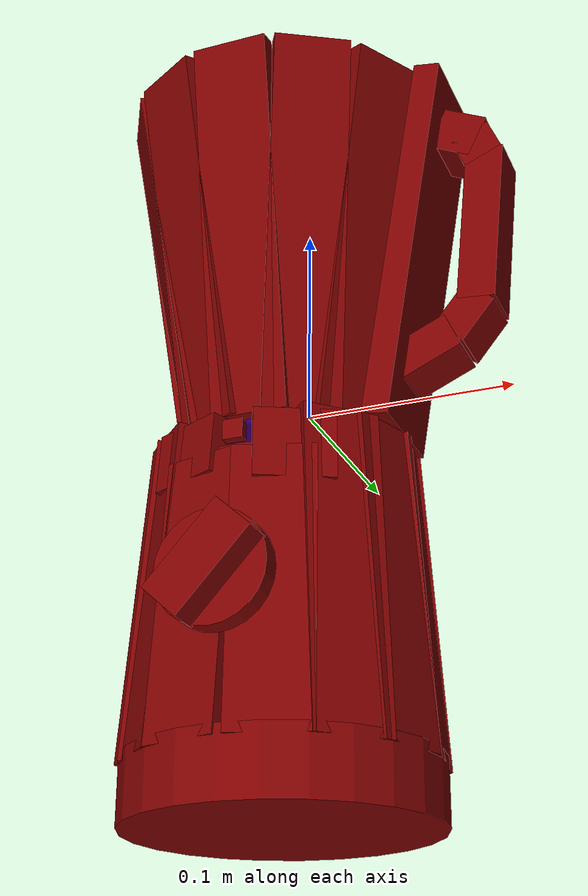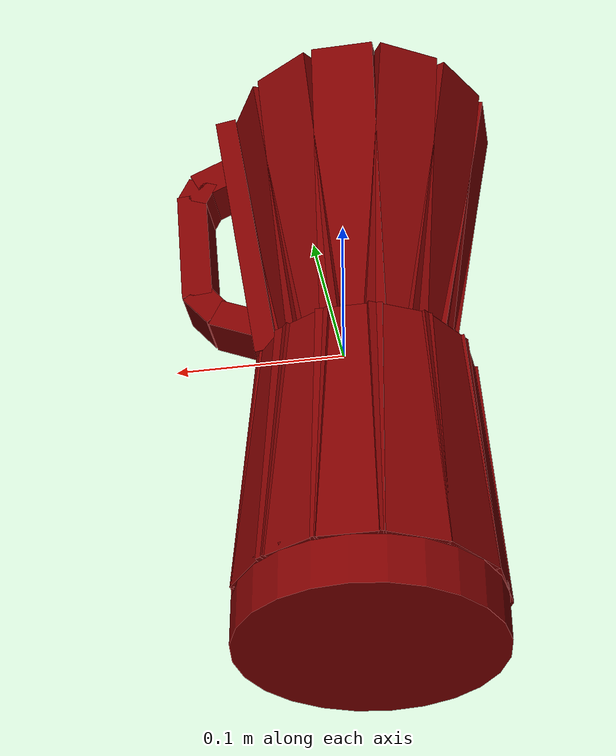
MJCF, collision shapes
<?xml version='1.0' encoding='UTF-8'?>
<mujoco model="model">
  <option timestep="0.002" gravity="0.0 0.0 -9.81"/>
  <compiler angle="radian"/>
  <asset>
    <mesh file="visuals/blade.obj" name="blade_vis"/>
    <mesh file="visuals/Body001.obj" name="Body001_vis"/>
    <mesh file="visuals/knob_speed.obj" name="knob_speed_vis"/>
    <mesh file="visuals/pitcher.obj" name="pitcher_vis"/>
    <mesh file="visuals/pitcher_main.obj" name="pitcher_main_vis"/>
    <mesh file="visuals/power_button.obj" name="power_button_vis"/>
    <texture file="visuals/T_BC001.png" name="Body001_material" type="2d"/>
    <material name="Body001_material" rgba="1 1 1 1.0" texture="Body001_material" shininess="0.4472135901451111" specular="0.3103448502657381"/>
    <texture file="visuals/T_BC001.png" name="knob_speed_material" type="2d"/>
    <material name="knob_speed_material" rgba="1 1 1 1.0" texture="knob_speed_material" shininess="0.4472135901451111" specular="0.3103448502657381"/>
    <material name="pitcher_material" rgba="0.5 0.5 0.5 0.699999988079071" shininess="0.5" specular="0.3103448502657381"/>
    <texture file="visuals/T_BC001.png" name="blade_material" type="2d"/>
    <material name="blade_material" rgba="1 1 1 1.0" texture="blade_material" shininess="0.4472135901451111" specular="0.3103448502657381"/>
    <texture file="visuals/T_BC001.png" name="pitcher_main_material" type="2d"/>
    <material name="pitcher_main_material" rgba="1 1 1 1.0" texture="pitcher_main_material" shininess="0.4472135901451111" specular="0.3103448502657381"/>
    <texture file="visuals/T_BC001.png" name="power_button_material" type="2d"/>
    <material name="power_button_material" rgba="1 1 1 1.0" texture="power_button_material" shininess="0.4472135901451111" specular="0.3103448502657381"/>
  </asset>
  <default>
    <default class="visual">
      <geom conaffinity="0" contype="0" group="1" type="mesh"/>
    </default>
    <default class="collision">
      <geom group="0" rgba="0.5 0 0 0.5" density="1.0" solref="0.004 1" solimp="0.998 0.998 0.001"/>
    </default>
    <default class="spawn">
      <geom group="0" rgba="1 1 1 0.5" contype="0" conaffinity="0"/>
      <site group="0" rgba="1 1 1 0.5"/>
    </default>
    <default class="region">
      <geom group="1" conaffinity="0" contype="0" rgba="0 1 0 0" mass="0"/>
    </default>
  </default>
  <worldbody>
    <body>
      <body name="object">
        <geom mesh="Body001_vis" type="mesh" solimp="0.998 0.998 0.001" solref="0.001 1" friction="0.95 0.3 0.1" class="visual" material="Body001_material"/>
        <geom type="cylinder" pos="-0.01364894 0.00517901 -0.17729765" size="0.07223193347454071 0.01565600000321865" quat="1.0 0.0 0.0 0.0" class="collision"/>
        <geom type="cylinder" pos="-0.01364892 0.00517901 -0.10186557" size="0.059829890727996826 0.0677737444639206" quat="1.0 0.0 0.0 0.0" class="collision"/>
        <geom type="box" pos="-0.07513081 0.01196584 -0.09163070" size="0.004740977194160223 0.018581919372081757 0.07518734037876129" quat="0.9983850717544556 0.0015890260692685843 0.03639451414346695 -0.043590571731328964" class="collision"/>
        <geom type="box" pos="-0.04137623 0.06109778 -0.09163070" size="0.00474097765982151 0.018581921234726906 0.07518734037876129" quat="0.8520742058753967 0.01903415098786354 0.03106090985238552 -0.52215176820755" class="collision"/>
        <geom type="box" pos="-0.01340979 0.06755958 -0.09163070" size="0.004740977194160223 0.018581919372081757 0.07518734037876129" quat="0.706637442111969 0.025759262964129448 0.025759262964129448 -0.706637442111969" class="collision"/>
        <geom type="box" pos="-0.06460671 0.04089657 -0.09163070" size="0.004740977194160223 0.018581919372081757 0.07518734037876129" quat="0.9556699991226196 0.01065084058791399 0.03483732417225838 -0.29217764735221863" class="collision"/>
        <geom type="box" pos="-0.07030949 -0.01843974 -0.09163070" size="0.004740977194160223 0.018581919372081757 0.07518734037876129" quat="0.9774983525276184 -0.007574041374027729 0.03563303127884865 0.20777371525764465" class="collision"/>
        <geom type="box" pos="-0.05777650 -0.03701354 -0.09163070" size="0.004740977194160223 0.018581919372081757 0.07518734037876129" quat="0.9232662916183472 -0.013940813951194286 0.03365609422326088 0.38242942094802856" class="collision"/>
        <geom type="box" pos="0.01444209 0.06062059 -0.09163070" size="0.00474097765982151 0.018581919372081757 0.07518734037876129" quat="0.5221518278121948 0.031060900539159775 0.019034145399928093 -0.8520742058753967" class="collision"/>
        <geom type="box" pos="0.03483135 0.04351816 -0.09163070" size="0.004740977194160223 0.018581919372081757 0.07518734037876129" quat="0.32535216212272644 0.03444444015622139 0.011860170401632786 -0.9448909163475037" class="collision"/>
        <geom type="box" pos="0.04669719 0.01624186 -0.09163070" size="0.004740977194160223 0.018581919372081757 0.07518734037876129" quat="0.08709795027971268 0.03629047051072121 0.0031750064808875322 -0.9955334663391113" class="collision"/>
        <geom type="box" pos="0.04401952 -0.01442692 -0.09163070" size="0.00474097765982151 0.018581919372081757 0.07518734037876129" quat="0.16493791341781616 -0.03592943400144577 0.00601251982152462 0.985630989074707" class="collision"/>
        <geom type="box" pos="0.02992116 -0.03699794 -0.09163070" size="0.004740977194160223 0.018581919372081757 0.07518734037876129" quat="0.3743578791618347 -0.03377646952867508 0.01364657748490572 0.9265684485435486" class="collision"/>
        <geom type="box" pos="0.00436888 -0.05326415 -0.10183717" size="0.004860866814851761 0.018987733870744705 0.0649624690413475" quat="0.5873950719833374 -0.029471756890416145 0.021412484347820282 0.8084800243377686" class="collision"/>
        <geom type="box" pos="-0.03054678 -0.05387982 -0.10183717" size="0.004740977194160223 0.018581919372081757 0.06495371460914612" quat="0.792826771736145 -0.02217664010822773 0.028901150450110435 0.6083573698997498" class="collision"/>
        <geom type="box" pos="0.01075822 -0.04574376 -0.03591481" size="0.00474097765982151 0.018581917509436607 0.016848616302013397" quat="0.5295674204826355 -0.030893627554178238 0.01930447481572628 0.8474852442741394" class="collision"/>
        <geom type="box" pos="-0.03857974 -0.04552223 -0.03288599" size="0.004740977194160223 0.018581919372081757 0.014263604767620564" quat="0.8428314924240112 -0.01957334391772747 0.03072398342192173 0.5369431972503662" class="collision"/>
        <body name="power_button">
          <joint axis="0.0 1.0 0.0" pos="-0.01376783 -0.05584328 -0.02839275" limited="true" name="power_button_joint" range="0.0 0.002" type="slide" damping="1" frictionloss="1" armature=".01" stiffness="0.5" springref="-0.5"/>
          <geom mesh="power_button_vis" type="mesh" solimp="0.998 0.998 0.001" solref="0.001 1" friction="0.95 0.3 0.1" class="visual" material="power_button_material"/>
          <geom class="collision" type="box" pos="-0.01373722 -0.05575219 -0.02841941" size="0.004705454688519239 0.0024300110526382923 0.004778042435646057" quat="1.0 0.0 0.0 0.0" name="power_button_main"/>
        </body>
        <body name="pitcher">
          <geom mesh="pitcher_vis" type="mesh" solimp="0.998 0.998 0.001" solref="0.001 1" friction="0.95 0.3 0.1" class="visual" material="pitcher_material"/>
          <geom type="box" pos="-0.01340979 -0.05356316 0.07928143" size="0.004740975797176361 0.018581919372081757 0.09355513006448746" quat="0.7044395804405212 0.0613589882850647 0.0613589882850647 -0.7044395208358765" class="collision"/>
          <geom type="box" pos="-0.01340978 0.06392115 0.07928143" size="0.004740975797176361 0.018581919372081757 0.09355513006448746" quat="0.7044395804405212 -0.0613589882850647 0.0613589882850647 0.7044395208358765" class="collision"/>
          <geom type="box" pos="-0.01340978 0.06392115 0.07928143" size="0.004740975797176361 0.018581919372081757 0.09355513006448746" quat="0.7044395804405212 -0.0613589882850647 0.0613589882850647 0.7044395208358765" class="collision"/>
          <geom type="box" pos="-0.01340979 -0.05356316 0.07928143" size="0.004740975797176361 0.018581919372081757 0.09355513006448746" quat="0.7044395804405212 0.0613589882850647 0.0613589882850647 -0.7044395208358765" class="collision"/>
          <geom type="box" pos="-0.07215194 0.00517899 0.07928143" size="0.004740975797176361 0.018581919372081757 0.09355513751506805" quat="7.475988894611874e-08 0.08677461743354797 1.3479705129881836e-09 -0.9962279796600342" class="collision"/>
          <geom type="box" pos="0.04533237 0.00517900 0.07928143" size="0.004740975797176361 0.018581919372081757 0.09355513006448746" quat="0.9962279796600342 -5.203322217539608e-09 0.08677471429109573 4.5322756658805474e-10" class="collision"/>
          <geom type="box" pos="0.03746241 0.03455008 0.07928143" size="0.004740975797176361 0.018581919372081757 0.09355513006448746" quat="0.9622822999954224 -0.02245895378291607 0.08381793648004532 0.2578427791595459" class="collision"/>
          <geom type="box" pos="-0.06428199 -0.02419209 0.07928143" size="0.004740975797176361 0.018581919372081757 0.09355513751506805" quat="0.2578427791595459 0.08381803333759308 0.02245897427201271 -0.9622822999954224" class="collision"/>
          <geom type="box" pos="-0.04278086 -0.04569321 0.07928143" size="0.004740975797176361 0.018581919372081757 0.09355513751506805" quat="0.49811404943466187 0.07514900714159012 0.043387334793806076 -0.8627586960792542" class="collision"/>
          <geom type="box" pos="0.01596129 0.05605120 0.07928143" size="0.004740975797176361 0.018581919372081757 0.09355513751506805" quat="0.8627587556838989 -0.04338733106851578 0.07514902949333191 0.4981139600276947" class="collision"/>
          <geom type="box" pos="-0.04278086 0.05605120 0.07928143" size="0.004740975797176361 0.018581919372081757 0.09355513751506805" quat="0.49811404943466187 -0.07514900714159012 0.043387334793806076 0.8627586960792542" class="collision"/>
          <geom type="box" pos="0.01596129 -0.04569320 0.07928143" size="0.004740975797176361 0.018581919372081757 0.09355513006448746" quat="0.8627587556838989 0.04338734969496727 0.07514909654855728 -0.4981139302253723" class="collision"/>
          <geom type="box" pos="0.03746241 -0.02419208 0.07928143" size="0.004740975797176361 0.018581919372081757 0.09355513006448746" quat="0.9622823596000671 0.022458944469690323 0.08381792157888412 -0.25784268975257874" class="collision"/>
          <geom type="box" pos="-0.06428199 0.03455007 0.07928143" size="0.004740975797176361 0.018581919372081757 0.09355513751506805" quat="0.2578427791595459 -0.08381803333759308 0.02245897427201271 0.9622822999954224" class="collision"/>
          <geom class="collision" type="box" pos="0.08060288 0.00442261 0.13820456" size="0.011232865042984486 0.012886925600469112 0.010835387744009495" quat="0.9739777445793152 0.0 0.2266436368227005 0.0" name="pitcher_handle_0"/>
          <geom class="collision" type="box" pos="0.08998093 0.00442261 0.12905489" size="0.008133475668728352 0.012886925600469112 0.009914564900100231" quat="0.8326515555381775 0.0 0.5537972450256348 0.0" name="pitcher_handle_1"/>
          <geom class="collision" type="box" pos="0.09003628 0.00442261 0.08520831" size="0.04113192483782768 0.012886925600469112 0.00918785110116005" quat="0.6727584004402161 3.299103656928537e-09 0.7398622632026672 -2.810899513150389e-09" name="pitcher_handle_2"/>
          <geom class="collision" type="box" pos="0.08013169 0.00442261 0.03771976" size="0.012385156936943531 0.012886925600469112 0.00875075999647379" quat="0.4286668002605438 0.0 0.9034626483917236 0.0" name="pitcher_handle_3"/>
          <geom class="collision" type="box" pos="0.06025315 0.00442261 0.02319772" size="0.015387085266411304 0.012886925600469112 0.009129141457378864" quat="0.2087034434080124 0.0 0.9779789447784424 0.0" name="pitcher_handle_4"/>
          <body name="blade">
            <geom mesh="blade_vis" type="mesh" solimp="0.998 0.998 0.001" solref="0.001 1" friction="0.95 0.3 0.1" class="visual" material="blade_material"/>
            <geom type="cylinder" pos="-0.01364893 0.00517901 -0.02543145" size="0.003170922864228487 0.004099421203136444" quat="1.0 0.0 0.0 0.0" class="collision"/>
            <geom type="box" pos="-0.01410603 0.00418800 -0.02250797" size="0.014141938649117947 0.00791434571146965 0.0002459282986819744" quat="0.9841994047164917 0.0 0.0 0.17706358432769775" class="collision"/>
            <geom type="box" pos="0.00506045 0.01131501 -0.01903470" size="0.009196617640554905 0.0075520845130085945 0.00036561701563186944" quat="0.956265926361084 0.06398852914571762 -0.22334979474544525 0.17769597470760345" class="collision"/>
            <geom type="box" pos="-0.03441685 -0.00336454 -0.02532603" size="0.008302983827888966 0.007914342917501926 0.00034735887311398983" quat="0.9655296802520752 0.029465211555361748 -0.1717633605003357 0.19334332644939423" class="collision"/>
            <geom type="box" pos="-0.01410603 0.00418800 -0.02371466" size="0.014141938649117947 0.007914344780147076 0.0002824610273819417" quat="0.8216372132301331 0.0 -0.0 -0.570010781288147" class="collision"/>
            <geom type="box" pos="-0.00667013 -0.01570229 -0.01987419" size="0.008311481215059757 0.00791434571146965 0.0002459282986819744" quat="0.7972676753997803 -0.1377963125705719 -0.1986253559589386 -0.5531043410301208" class="collision"/>
            <geom type="box" pos="-0.02175518 0.02464871 -0.02674755" size="0.008314153179526329 0.007914344780147076 0.0002459282986819744" quat="0.8104860782623291 -0.09359202533960342 -0.13490740954875946 -0.5622747540473938" class="collision"/>
          </body>
          <body name="pitcher_main">
            <geom class="region" type="cylinder" size="0.03664357587695122 0.07928308844566345" pos="-0.01319418 0.00478656 0.06569185" rgba="0 0 1 0.5" name="reg_int"/>
            <geom mesh="pitcher_main_vis" type="mesh" solimp="0.998 0.998 0.001" solref="0.001 1" friction="0.95 0.3 0.1" class="visual" material="pitcher_main_material"/>
            <geom type="box" pos="0.05502011 0.00517900 0.07935458" size="0.006446782033890486 0.027016857638955116 0.094341941177845" quat="0.9966984391212463 0.0 0.08119235932826996 0.0" class="collision"/>
            <geom type="cylinder" pos="-0.01364892 0.00517901 -0.03183776" size="0.03966103494167328 0.0012146661756560206" quat="1.0 0.0 0.0 0.0" class="collision"/>
          </body>
        </body>
        <body name="knob_speed">
          <joint axis="0.0 1.0 0.0" pos="-0.01317398 -0.07470910 -0.09942290" limited="true" name="knob_speed_joint" range="0.0 4.71238898038469" type="hinge" damping="0.05" frictionloss="0.1" armature="0.001"/>
          <geom mesh="knob_speed_vis" type="mesh" solimp="0.998 0.998 0.001" solref="0.001 1" friction="0.95 0.3 0.1" class="visual" material="knob_speed_material"/>
          <geom type="cylinder" pos="-0.01364893 -0.07254580 -0.09890006" size="0.025688841938972473 0.005045394878834486" quat="0.7071068286895752 -0.7071067690849304 -0.0 0.0" class="collision" density="0.001"/>
          <geom class="collision" type="box" pos="-0.01317081 -0.08396378 -0.09950612" size="0.010556374676525593 0.007968936115503311 0.023776941001415253" quat="0.3608556091785431 -4.125555008727133e-08 -0.9326217174530029 -7.759037146115588e-08" name="knob_speed_main" density="0.001"/>
        </body>
        <geom class="region" name="reg_main" type="box" pos="-0.011913235000000001 0.004331044999999999 0.0" size="0.09066411499999999 0.085063515 0.19429822"/>
      </body>
      <site rgba="0 1 0 0" size="0.005" pos="-0.01137218 0.00440853 0.16801763" name="anchor_site"/>
    </body>
  </worldbody>
  <actuator>
    <motor name="knob_speed_joint_actuator" joint="knob_speed_joint" gear="10"/>
    <motor name="power_button_joint_actuator" joint="power_button_joint" gear="0.5"/>
  </actuator>
</mujoco>
